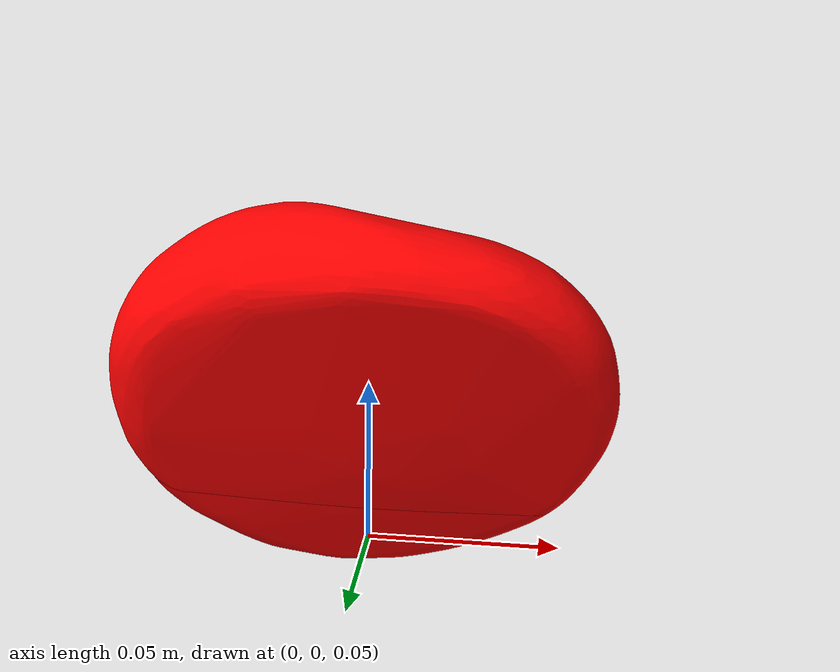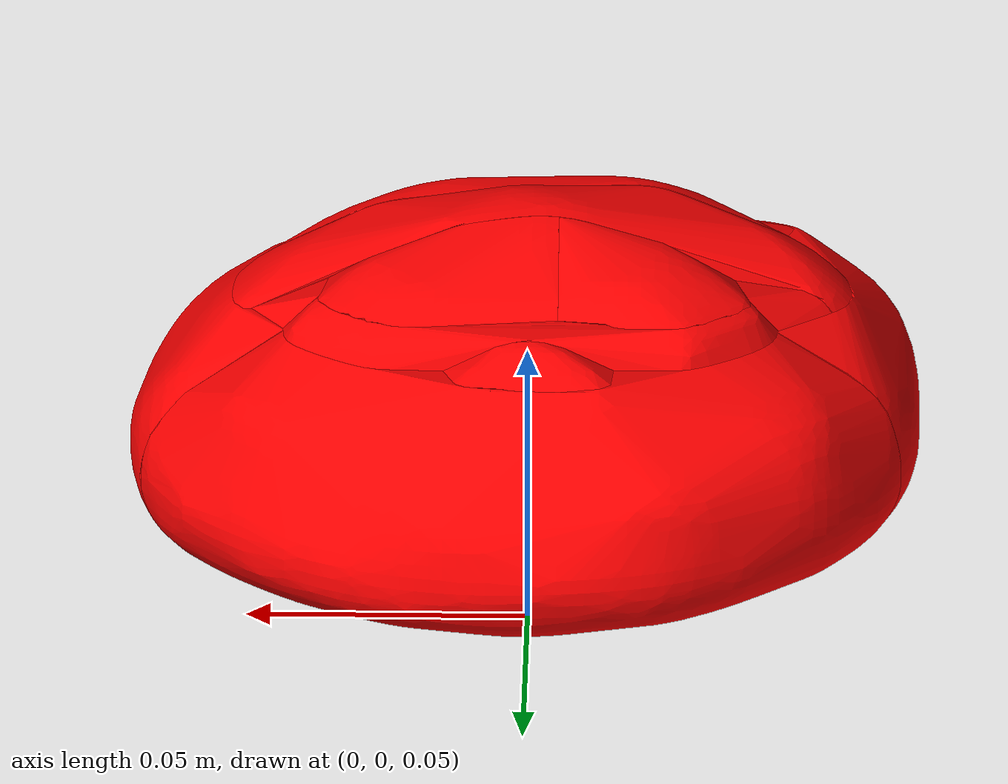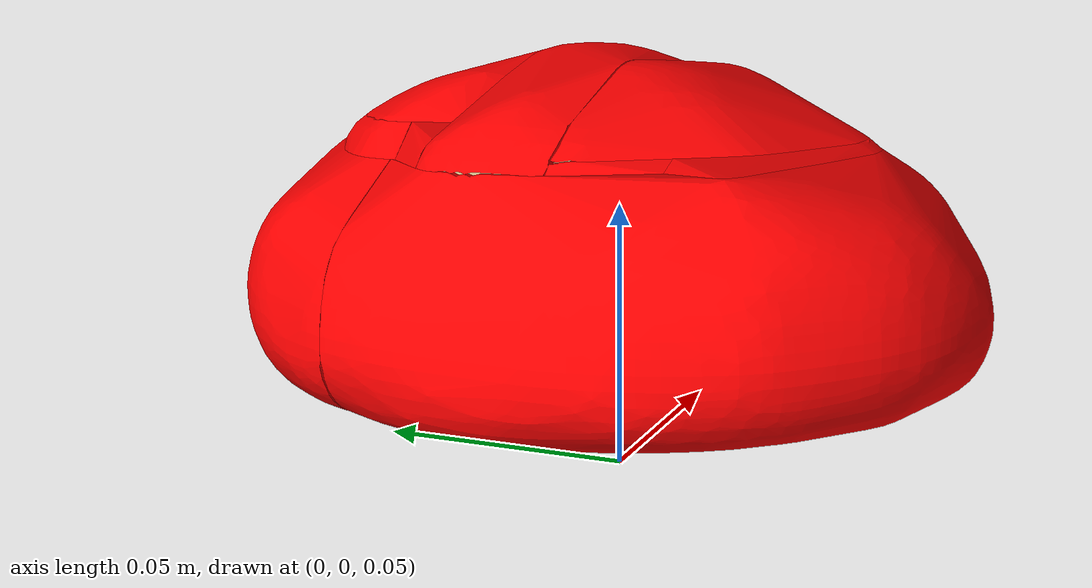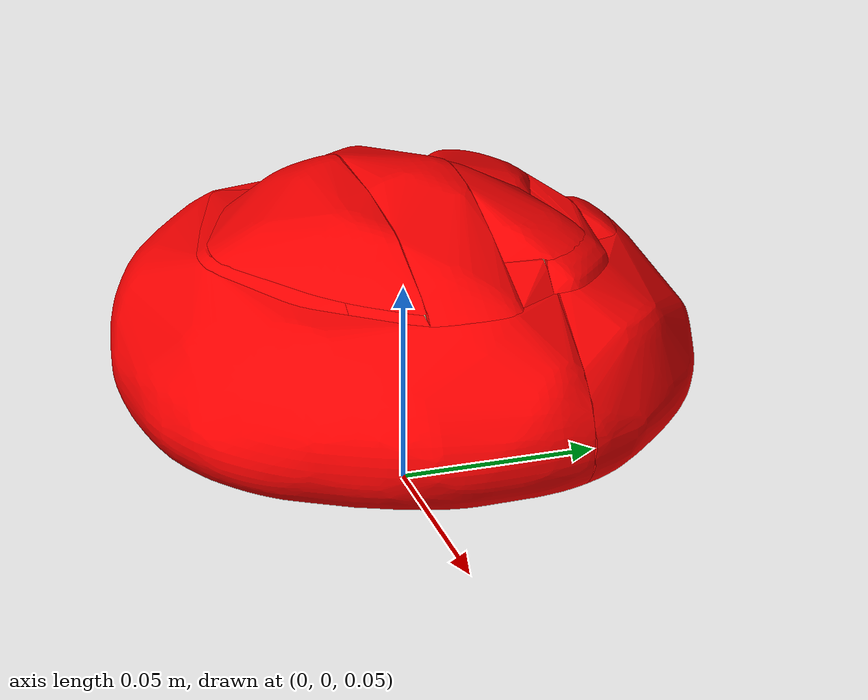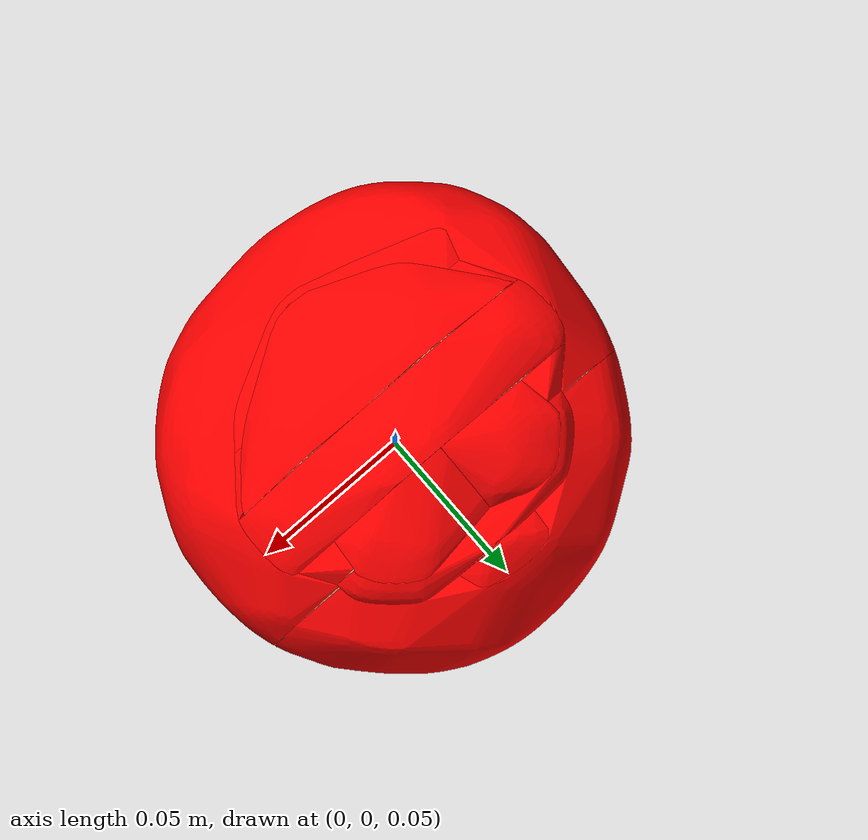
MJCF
<?xml version="1.0" ?>
<mujoco model="bread_roll_1">
	<compiler meshdir="bread_roll_1" texturedir="bread_roll_1" angle="radian" autolimits="true" balanceinertia="true" boundmass="0.000001" boundinertia="0.000001"/>
	<default>
		<default class="visual">
			<geom contype="0" conaffinity="0"/>
		</default>
		<default class="collision">
			<geom rgba="1.0 0.0 0.0 1.0"/>
		</default>
	</default>
	<asset>
		<mesh name="BreadRoll1" file="meshes/obj/BreadRoll1.obj" scale="1.0 1.0 1.0"/>
		<mesh name="BreadRoll1_001" file="meshes/stl/BreadRoll1_001.stl" scale="1.0 1.0 1.0"/>
		<mesh name="BreadRoll1_002" file="meshes/stl/BreadRoll1_002.stl" scale="1.0 1.0 1.0"/>
		<mesh name="BreadRoll1_003" file="meshes/stl/BreadRoll1_003.stl" scale="1.0 1.0 1.0"/>
		<mesh name="BreadRoll1_004" file="meshes/stl/BreadRoll1_004.stl" scale="1.0 1.0 1.0"/>
		<mesh name="BreadRoll1_005" file="meshes/stl/BreadRoll1_005.stl" scale="1.0 1.0 1.0"/>
		<mesh name="BreadRoll1_006" file="meshes/stl/BreadRoll1_006.stl" scale="1.0 1.0 1.0"/>
		<mesh name="BreadRoll1_007" file="meshes/stl/BreadRoll1_007.stl" scale="1.0 1.0 1.0"/>
		<mesh name="BreadRoll1_008" file="meshes/stl/BreadRoll1_008.stl" scale="1.0 1.0 1.0"/>
		<mesh name="BreadRoll1_009" file="meshes/stl/BreadRoll1_009.stl" scale="1.0 1.0 1.0"/>
		<mesh name="BreadRoll1_010" file="meshes/stl/BreadRoll1_010.stl" scale="1.0 1.0 1.0"/>
		<mesh name="BreadRoll1_011" file="meshes/stl/BreadRoll1_011.stl" scale="1.0 1.0 1.0"/>
		<material name="M_BreadRoll1" rgba="0.8 0.7 0.5 1"/>
		<texture name="T_BreadRoll1" type="2d" file="textures/T_BreadRoll1.png"/>
	</asset>
	<worldbody>
		<body name="bread_roll_1" pos="0.0 0.0 0.1" quat="1.0 0.0 0.0 0.0">
			<freejoint />
			<inertial mass="0.13307981193065643" pos="-0.0012862859293818474 -0.0009012651280499995 -0.0064133149571716785" quat="0.9682528972625732 0.006226154509931803 0.0009538548765704036 0.24989326298236847" diaginertia="0.00014642490714322776 0.00015914584218990058 0.00025146518601104617"/>
			<geom name="BreadRoll1" type="mesh" pos="0.0 0.0 0.0" quat="1.0 0.0 0.0 0.0" mesh="BreadRoll1" material="M_BreadRoll1" class="visual" />
			<geom name="BreadRoll1_001" type="mesh" pos="0.0 0.0 0.0" quat="1.0 0.0 0.0 0.0" mesh="BreadRoll1_001" class="collision"/>
			<geom name="BreadRoll1_002" type="mesh" pos="0.0 0.0 0.0" quat="1.0 0.0 0.0 0.0" mesh="BreadRoll1_002" class="collision"/>
			<geom name="BreadRoll1_003" type="mesh" pos="0.0 0.0 0.0" quat="1.0 0.0 0.0 0.0" mesh="BreadRoll1_003" class="collision"/>
			<geom name="BreadRoll1_004" type="mesh" pos="0.0 0.0 0.0" quat="1.0 0.0 0.0 0.0" mesh="BreadRoll1_004" class="collision"/>
			<geom name="BreadRoll1_005" type="mesh" pos="0.0 0.0 0.0" quat="1.0 0.0 0.0 0.0" mesh="BreadRoll1_005" class="collision"/>
			<geom name="BreadRoll1_006" type="mesh" pos="0.0 0.0 0.0" quat="1.0 0.0 0.0 0.0" mesh="BreadRoll1_006" class="collision"/>
			<geom name="BreadRoll1_007" type="mesh" pos="0.0 0.0 0.0" quat="1.0 0.0 0.0 0.0" mesh="BreadRoll1_007" class="collision"/>
			<geom name="BreadRoll1_008" type="mesh" pos="0.0 0.0 0.0" quat="1.0 0.0 0.0 0.0" mesh="BreadRoll1_008" class="collision"/>
			<geom name="BreadRoll1_009" type="mesh" pos="0.0 0.0 0.0" quat="1.0 0.0 0.0 0.0" mesh="BreadRoll1_009" class="collision"/>
			<geom name="BreadRoll1_010" type="mesh" pos="0.0 0.0 0.0" quat="1.0 0.0 0.0 0.0" mesh="BreadRoll1_010" class="collision"/>
			<geom name="BreadRoll1_011" type="mesh" pos="0.0 0.0 0.0" quat="1.0 0.0 0.0 0.0" mesh="BreadRoll1_011" class="collision"/>
		</body>
	</worldbody>
	<equality/>
</mujoco>
